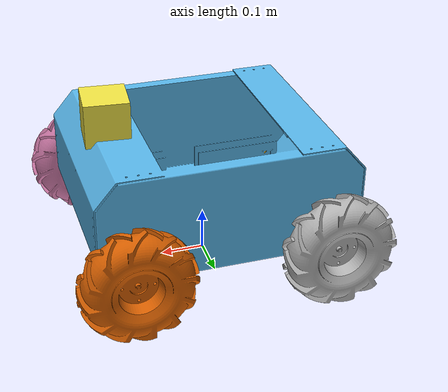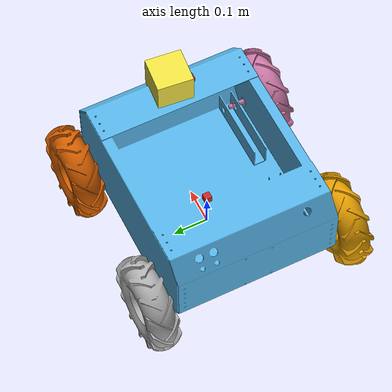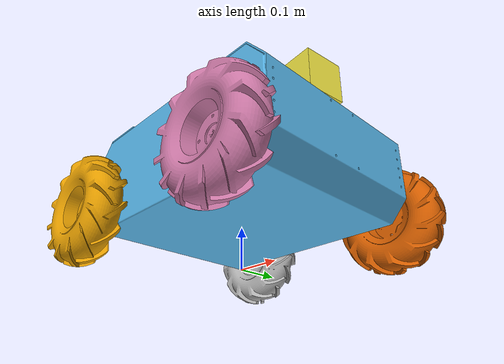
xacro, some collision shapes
<?xml version="1.0"?>
<robot name="arp" xmlns:xacro="http://www.ros.org/wiki/xacro">
    <!--Propriedades dos motores-->
    <xacro:property name="wheelEffort" value="10000.0"/>
    <xacro:property name="wheelVelocity" value="10000.0"/>
    <xacro:property name="wheelDamping" value="0.0"/>
    <xacro:property name="wheelFriction" value="0.0"/>
    <!--DImencao chassis-->
    <xacro:property name="chassisHeight" value="0.225"/>
    <!--Posicao do chassis-->
    <xacro:property name="chassisPoseX" value="-0.291"/>
    <xacro:property name="chassisPoseY" value="-0.23"/>
    <xacro:property name="chassisPoseZ" value="0.0979"/>
    <!-- Size of half square 'camera' box -->
    <xacro:property name="cameraLink" value="0.010" />
    <!--Posicao da Camera-->
    <xacro:property name="cameraPoseX" value="0.220"/>
    <xacro:property name="cameraPoseY" value="-0.05"/>
    <xacro:property name="cameraPoseZ" value="${chassisHeight+0.01}"/>
    <xacro:property name="cameraOrientation" value="0"/>
    <!--Posicao do Lidar-->
    <xacro:property name="lidarPoseX" value="${cameraPoseX}"/>
    <xacro:property name="lidarPoseY" value="0"/>
    <xacro:property name="lidarPoseZ" value="${chassisHeight+0.06}"/>
    <xacro:property name="lidarOrientation" value="-0.1"/>
    <!--Centro de massa chassis / sendo o ponto 0 o centro da base-->
    <xacro:property name="chassisCenterMassX" value="0"/>
    <xacro:property name="chassisCenterMassY" value="0"/>
    <xacro:property name="chassisCenterMassZ" value="0.095"/>
    <!--Posicao dos rodas-->
    <xacro:property name="frontWheelPose" value="0.225"/>
    <xacro:property name="backWheelPose" value="-${frontWheelPose}"/>
    <xacro:property name="leftWheelPose" value="0.282"/>
    <xacro:property name="rightWheelPose" value="-${leftWheelPose}"/>
    <xacro:property name="heightWheelPose" value="0.13"/>
    <!--Massa dos componentes-->
    <xacro:property name="chassisMass" value="14.336"/>
    <xacro:property name="wheelMass" value="1.877"/>
    <!--Inercia do chassis-->
    <xacro:property name="chassisInertiaXX" value="0.34"/>
    <xacro:property name="chassisInertiaYY" value="0.44"/>
    <xacro:property name="chassisInertiaZZ" value="0.63"/>
    <xacro:property name="chassisInertiaXY" value="0.0"/>
    <xacro:property name="chassisInertiaXZ" value="0.0"/>
    <xacro:property name="chassisInertiaYZ" value="0.0"/>
    <!--Inercia do roda-->
    <xacro:property name="wheelInertiaXX" value="0.01"/>
    <xacro:property name="wheelInertiaYY" value="0.01"/>
    <xacro:property name="wheelInertiaZZ" value="0.01"/>
    <xacro:property name="wheelInertiaXY" value="0.0"/>
    <xacro:property name="wheelInertiaXZ" value="0.0"/>
    <xacro:property name="wheelInertiaYZ" value="0.0"/>
    <!--PI-->
    <xacro:property name="PI" value="3.14159265359"/>

    <!--Macro inicializacao motor e roda description-->
    <xacro:macro name="jointWheel" params="name nameMimic *originjoint *originmesh">
        <link name="${name}_wheel_link">
            <inertial>
                <origin xyz="0 0 0" rpy="0 0 0"/>
                <mass value="${wheelMass}"/>
                <inertia
                    ixx="${wheelInertiaXX}" ixy="${wheelInertiaXY}" ixz="${wheelInertiaXZ}"
                    iyy="${wheelInertiaYY}" iyz="${wheelInertiaYZ}"
                    izz="${wheelInertiaZZ}"
                />
            </inertial>
            <collision>
                <origin xyz="0 0 0" rpy="0 1.5707 1.5707"/>
                <geometry>
                    <cylinder length="0.08" radius="0.13"/>
                </geometry>
            </collision>
            <visual>
                <xacro:insert_block name="originmesh"/>
                <geometry>
                    <mesh filename="package://arp_description/meshes/pneu.STL"/>
                </geometry>
            </visual>
        </link>
        <joint name="${name}_wheel" type="continuous">
            <parent link="chassis"/>
            <child link="${name}_wheel_link"/>
            <xacro:insert_block name="originjoint"/>
            <axis xyz="0 1 0"/>
            <limit effort="${wheelEffort}"  velocity="${wheelVelocity}"/>
            <joint_properties damping="${wheelDamping}" friction="${wheelFriction}"/>
            <mimic joint="${nameMimic}_wheel"/>
        </joint>
        <transmission name="${name}_trans">
            <type>transmission_interface/SimpleTransmission</type>
            <joint name="${name}_wheel">
                <hardwareInterface>VelocityJointInterface</hardwareInterface>
            </joint>
            <actuator name="${name}Motor">
                <hardwareInterface>VelocityJointInterface</hardwareInterface>
                <mechanicalReduction>1</mechanicalReduction>
            </actuator>
        </transmission>
    </xacro:macro>

    <!--Base inicial sem inercia-->
    <link name="base_link" />
    <joint name="base_link_joint" type="fixed">
        <parent link="base_link"/>
        <child link="chassis"/>
    </joint>

    <!--Chassis description-->
    <link name="chassis">
        <inertial>
            <origin xyz="${chassisCenterMassX} ${chassisCenterMassY} ${chassisCenterMassZ+chassisPoseZ}" rpy="0 0 0"/>
            <mass value="${chassisMass}"/>
            <inertia
                ixx="${chassisInertiaXX}" ixy="${chassisInertiaXY}" ixz="${chassisInertiaXZ}"
                iyy="${chassisInertiaYY}" iyz="${chassisInertiaYZ}"
                izz="${chassisInertiaZZ}"
            />
        </inertial>
        <collision>
            <origin xyz="${chassisPoseX} ${chassisPoseY} ${chassisPoseZ}" rpy="0 0 0"/>
            <geometry>
                <mesh filename="package://arp_description/meshes/chassis_collision.STL"/>
            </geometry>
        </collision>
        <visual>
            <origin xyz="${chassisPoseX-0.010} ${chassisPoseY} ${chassisPoseZ}" rpy="0 0 0"/>
            <geometry>
                <mesh filename="package://arp_description/meshes/chassis_visual.STL"/>
            </geometry>
        </visual>
    </link>

    <!-- Camera Link-->

    <link name="my_camera">
      <inertial>
        <origin xyz=".0 .0 ${cameraLink}" rpy="0 0 0"/>
        <mass value="1"/>
        <inertia ixx=".166"  ixy="0"  ixz="0" iyy=".166" iyz="0" izz=".166" />
      </inertial>
      <visual>
        <origin xyz=".0 .0 ${cameraLink}" rpy="0 0 0"/>
        <geometry>
          <box size="${cameraLink*2} ${cameraLink*4} ${cameraLink*2}"/>
        </geometry>
        <material name="red"/>
      </visual>
      <collision>
        <origin xyz=".0 .0 ${cameraLink}" rpy="0 0 0"/>
        <geometry>
          <box size="${cameraLink*2} ${cameraLink*2} ${cameraLink*2}"/>
        </geometry>
      </collision>
    </link>

    <!-- Hokuyo Link -->
    <link name="laser_frame">
      <inertial>
        <mass value="1e-5" />
        <origin xyz="0 0 0" rpy="0 0 0"/>
        <inertia ixx="1e-6" ixy="0" ixz="0" iyy="1e-6" iyz="0" izz="1e-6" />
      </inertial>
      <visual>
        <origin xyz="0 0 0" rpy="0 0 0"/>
        <geometry>
          <mesh filename="package://arp_description/meshes/hokuyo.dae"/>
        </geometry>
      </visual>
      <collision>
        <origin xyz="0 0 0" rpy="0 0 0"/>
        <geometry>
          <box size="0.1 0.1 0.1"/>
        </geometry>
      </collision>
    </link>

    <joint name="camera_joint" type="fixed">
      <axis xyz="0 0 1" />
      <origin xyz="${cameraPoseX} ${cameraPoseY} ${cameraPoseZ+chassisPoseZ+cameraLink}" rpy="0 0 ${cameraOrientation}"/>
      <parent link="chassis"/>
      <child link="my_camera"/>
    </joint>

    <joint name="hokuyo_joint" type="fixed">
      <axis xyz="0 0 1" />
      <origin xyz="${lidarPoseX} ${lidarPoseY} ${lidarPoseZ+chassisPoseZ}" rpy="0 0 ${lidarOrientation}"/>
      <parent link="chassis"/>
      <child link="laser_frame"/>
    </joint>

    <link name="imu_sensor_link">
      <collision>
        <origin xyz="0 0 0" rpy="0 0 0"/>
        <geometry>
          <box size="0.02 0.02 0.02"/>
        </geometry>
      </collision>
      <visual>
        <origin xyz="0 0 0" rpy="0 0 0"/>
        <geometry>
          <box size="0.02 0.02 0.02"/>
        </geometry>
        <material name="red"/>
      </visual>
      <inertial>
        <mass value="0.001" />
        <origin xyz="0 0 0" rpy="0 0 0"/>
        <inertia ixx="0.00000015" ixy="0" ixz="0" iyy="0.00000015" iyz="0" izz="0.00000015" />
      </inertial>
    </link>

    <joint name="imu_sensor_joint" type="fixed">
      <axis xyz="0 0 1" />
      <origin xyz="0 0 ${chassisPoseZ+0.02}" rpy="0 0 0"/>
      <parent link="chassis"/>
      <child link="imu_sensor_link"/>
    </joint>

    <!--Joint description e roda-->
    <xacro:jointWheel name="front_left" nameMimic="back_left">
        <origin xyz="${frontWheelPose} ${leftWheelPose} ${heightWheelPose}" rpy="0 0 0"/>
        <origin xyz="-0.135 0.044 0.1345" rpy="${PI} 0 0"/>
    </xacro:jointWheel>
    <xacro:jointWheel name="front_right" nameMimic="back_right">
        <origin xyz="${frontWheelPose} ${rightWheelPose} ${heightWheelPose}" rpy="0 0 0"/>
        <origin xyz="-0.135 -0.044 -0.1345" rpy="0 0 0"/>
    </xacro:jointWheel>
    <xacro:jointWheel name="back_left" nameMimic="front_left">
        <origin xyz="${backWheelPose} ${leftWheelPose} ${heightWheelPose}" rpy="0 0 0"/>
        <origin xyz="-0.135 0.044 0.1345" rpy="${PI} 0 0"/>
    </xacro:jointWheel>
    <xacro:jointWheel name="back_right" nameMimic="front_right">
        <origin xyz="${backWheelPose} ${rightWheelPose} ${heightWheelPose}" rpy="0 0 0"/>
        <origin xyz="-0.135 -0.044 -0.1345" rpy="0 0 0"/>
    </xacro:jointWheel>

    <!--Gazebo plugin-->
    <gazebo>
        <plugin name="gazebo_ros_control" filename="libgazebo_ros_control.so">
            <robotNamespace>/</robotNamespace>
        </plugin>
    </gazebo>

    <!-- Plugin camera -->
     <gazebo reference="my_camera">
       <sensor type="camera" name="camera1">
         <update_rate>30.0</update_rate>
         <camera name="head">
           <horizontal_fov>1.3962634</horizontal_fov>
           <image>
             <width>1920</width>
             <height>1080</height>
             <format>R8G8B8</format>
           </image>
           <clip>
             <near>0.08</near>
             <far>300</far>
           </clip>
           <noise>
             <type>gaussian</type>
             <mean>0.0</mean>
             <stddev>0.007</stddev>
           </noise>
         </camera>
         <plugin name="camera_controller" filename="libgazebo_ros_camera.so">
           <alwaysOn>true</alwaysOn>
           <updateRate>0.0</updateRate>
           <cameraName>arp/camera1</cameraName>
           <imageTopicName>image_raw</imageTopicName>
           <cameraInfoTopicName>camera_info</cameraInfoTopicName>
           <frameName>camera_link</frameName>
           <hackBaseline>0.07</hackBaseline>
           <distortionK1>0.0</distortionK1>
           <distortionK2>0.0</distortionK2>
           <distortionK3>0.0</distortionK3>
           <distortionT1>0.0</distortionT1>
           <distortionT2>0.0</distortionT2>
         </plugin>
       </sensor>
     </gazebo>

    <!-- Plugin laser Hokuyo -->
    <gazebo reference="laser_frame">
      <sensor type="ray" name="head_hokuyo_sensor">
        <pose>0 0 0 0 0 0</pose>
        <visualize>false</visualize>
        <update_rate>40</update_rate>
        <ray>
          <scan>
            <horizontal>
              <samples>100</samples>
              <resolution>1</resolution>
              <min_angle>0</min_angle>
              <max_angle>6.283185307</max_angle>
            </horizontal>
          </scan>
          <range>
            <min>0.10</min>
            <max>30.0</max>
            <resolution>0.01</resolution>
          </range>
          <noise>
            <type>gaussian</type>
            <mean>0.0</mean>
            <stddev>0.01</stddev>
          </noise>
        </ray>
        <plugin name="gazebo_ros_head_hokuyo_controller" filename="libgazebo_ros_laser.so">
          <topicName>arp/laser/scan</topicName>
          <frameName>hokuyo_link</frameName>
        </plugin>
      </sensor>
    </gazebo>

<gazebo>
  <plugin name="imu_sensor" filename="libgazebo_ros_imu.so">
    <always_on>true</always_on>
    <update_rate>100.0</update_rate>
    <bodyName>imu_sensor_link</bodyName>
    <topicName>arp/imu</topicName>
    <serviceName>arp/imu_service</serviceName>
    <rpyOffset>0 0 0</rpyOffset>
    <gaussianNoise>0</gaussianNoise>
    <accelDrift>0 0 0 </accelDrift>
    <accelGaussianNoise>0 0 0</accelGaussianNoise>
    <rateDrift>0 0 0</rateDrift>
    <rateGaussianNoise>0 0 0</rateGaussianNoise>
    <headingDrift>00</headingDrift>
    <headingGaussianNoise>0</headingGaussianNoise>
  </plugin>
</gazebo>

    <gazebo reference="imu_sensor_link">
      <gravity>true</gravity>
     </gazebo>

</robot>
